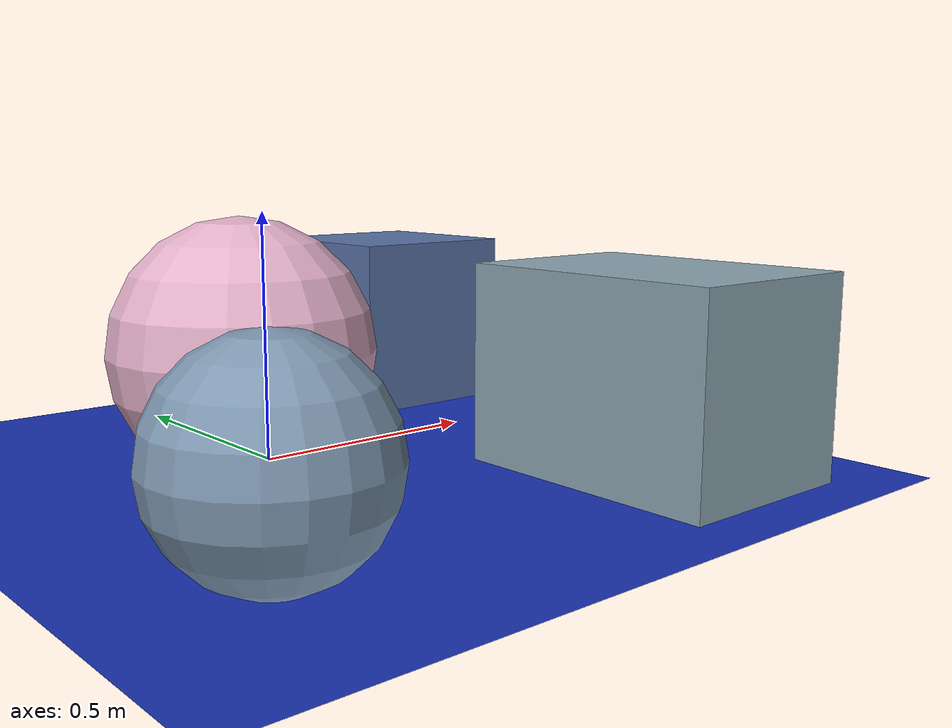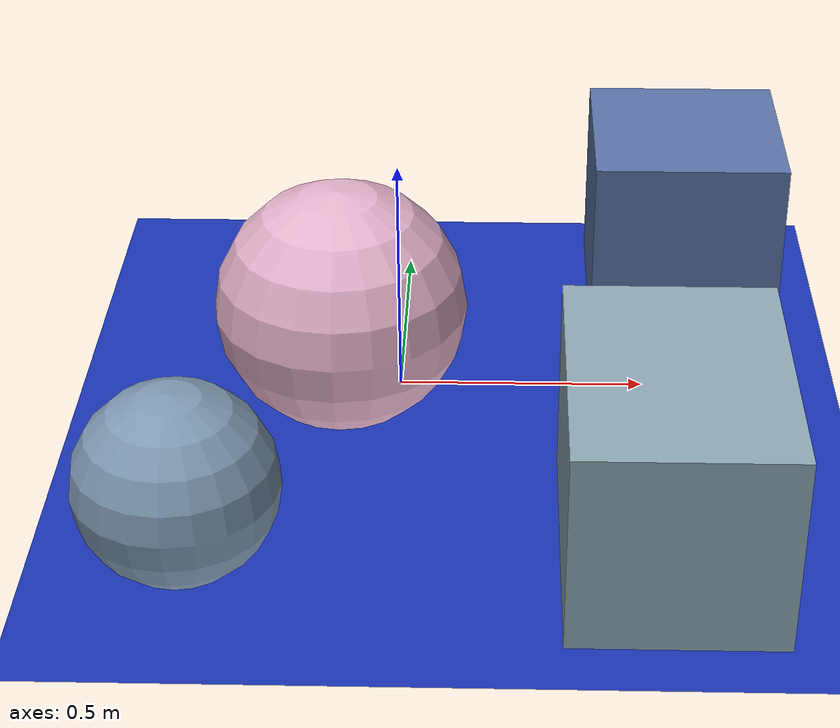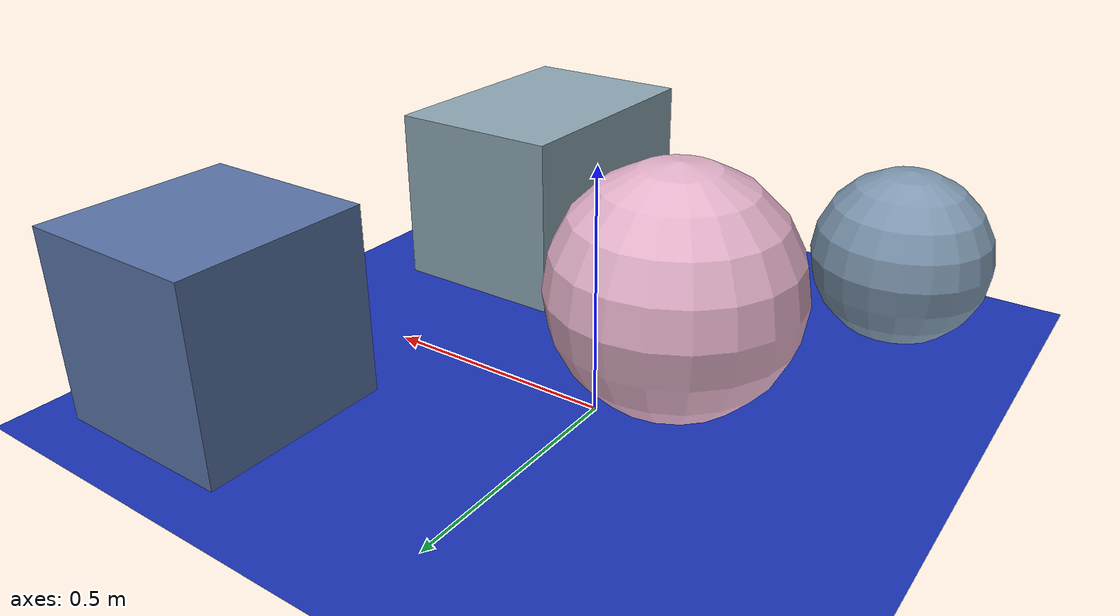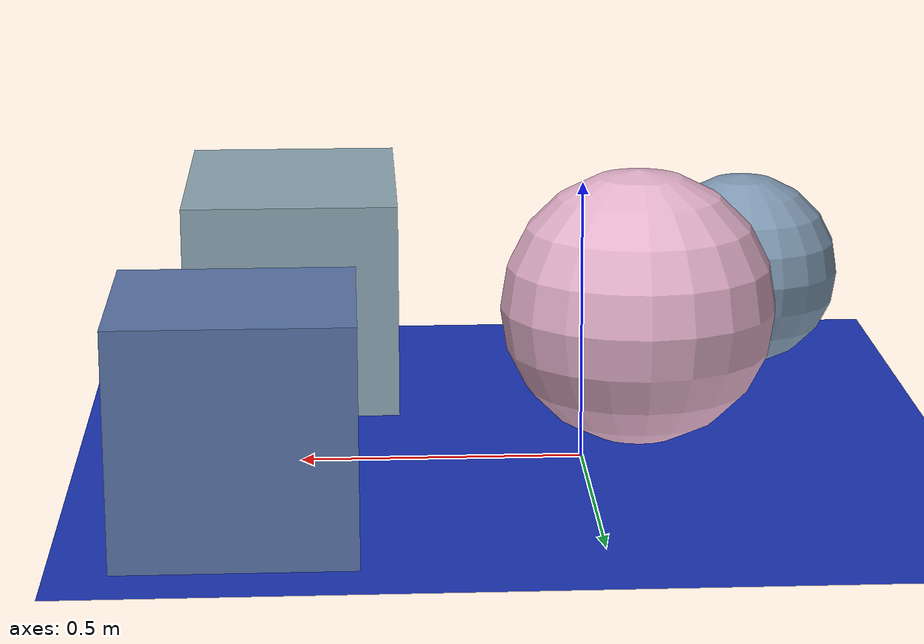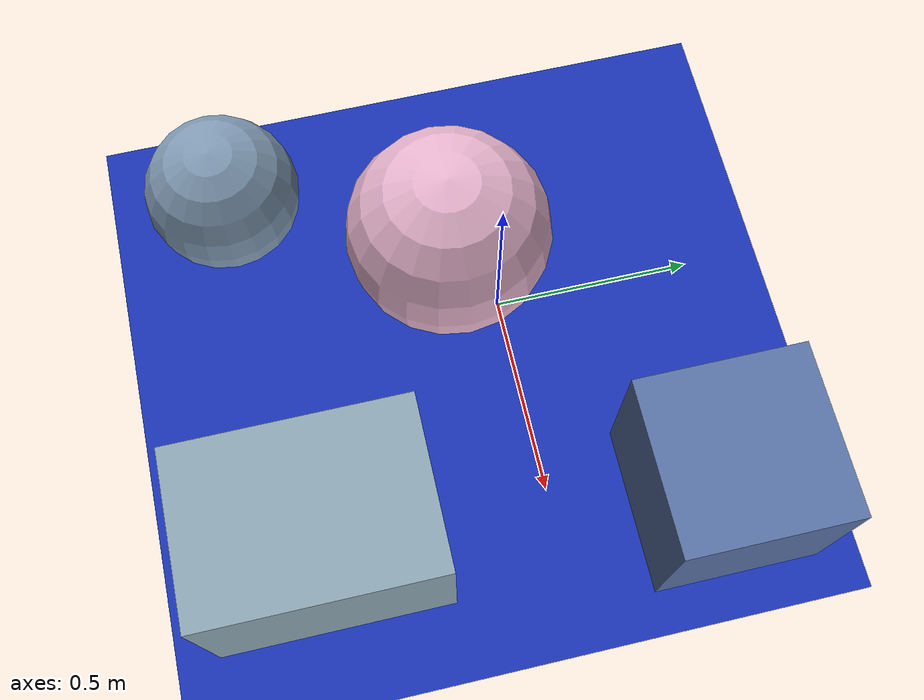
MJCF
<mujoco>
   <asset>
<texture type="skybox" builtin="gradient" rgb1="1.0 0.4 0.3" rgb2="0.2 0.3 0.6" width="256" height="256"/>
<texture name="checker_0" builtin="checker" type="2d" rgb1="0.7 0.7 0.5" rgb2="0.0 0.2 0.8" width="200" height="200"/>
<texture name="flat_1" builtin="flat" rgb1="0.9 0.7 0.8" rgb2="0.9 0.7 0.8"  width="200" height="200"/>
<texture name="flat_2" builtin="flat" rgb1="0.5 0.6 0.7" rgb2="0.5 0.6 0.7"  width="200" height="200"/>
<texture name="checker_3" builtin="checker" type="2d" rgb1="0.8 0.5 1.0" rgb2="0.3 0.8 0.4" width="200" height="200"/><material name="checker_0_mat" reflectance="0" texrepeat="5 5" texture="checker_0" texuniform="false" />
<material name="flat_1_mat" reflectance="0" texture="flat_1" texuniform="true"/>
<material name="flat_2_mat" reflectance="0" texture="flat_2" texuniform="true"/>
<material name="checker_3_mat" reflectance="0" texrepeat="5 5" texture="checker_3" texuniform="false" />
   </asset>

   <worldbody>
      <light diffuse=".9 .9 .9" pos="0 0 3" dir="0 0 -1"/>
     <geom type="plane" size="1 1 0.1" rgba="0.1 0.2 0.7 1"/>
<geom type="box" pos="0.6 0.39 0.2" size="0.2 0.2 0.2" material="checker_0_mat" />
<geom type="sphere" pos="-0.11 -0.1 0.25" size="0.25 0.25 0.25" material="flat_1_mat" />
<geom type="sphere" pos="-0.37 -0.62 0.19" size="0.19 0.19 0.19" material="flat_2_mat" />
<geom type="box" pos="0.52 -0.55 0.2" size="0.2 0.28 0.2" material="checker_3_mat" /><camera euler="60 0 180" fovy="60" name="camera_a" pos="0 -1.5 1"></camera>   </worldbody>
</mujoco>
